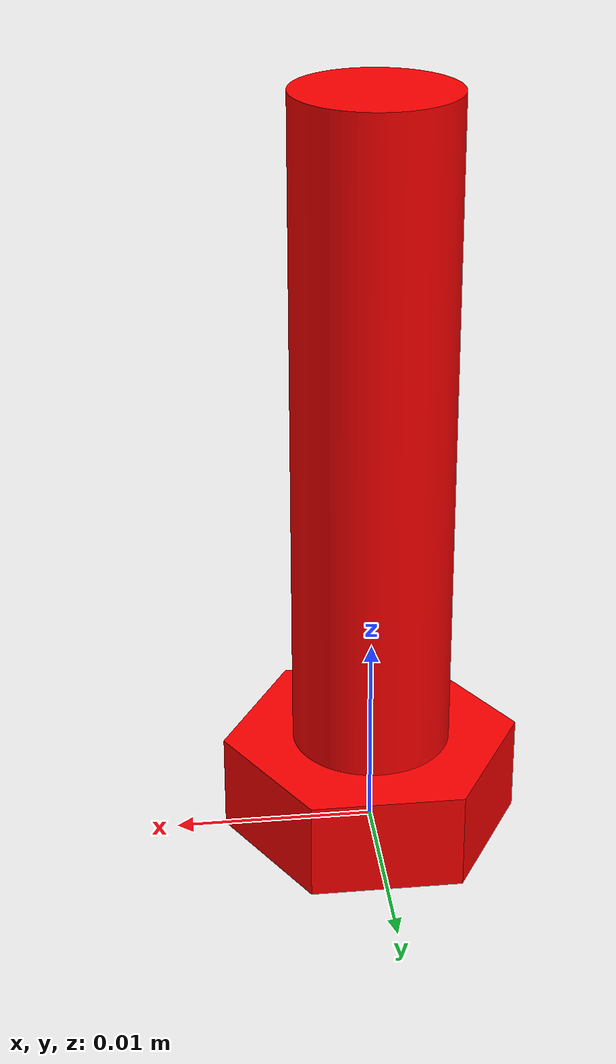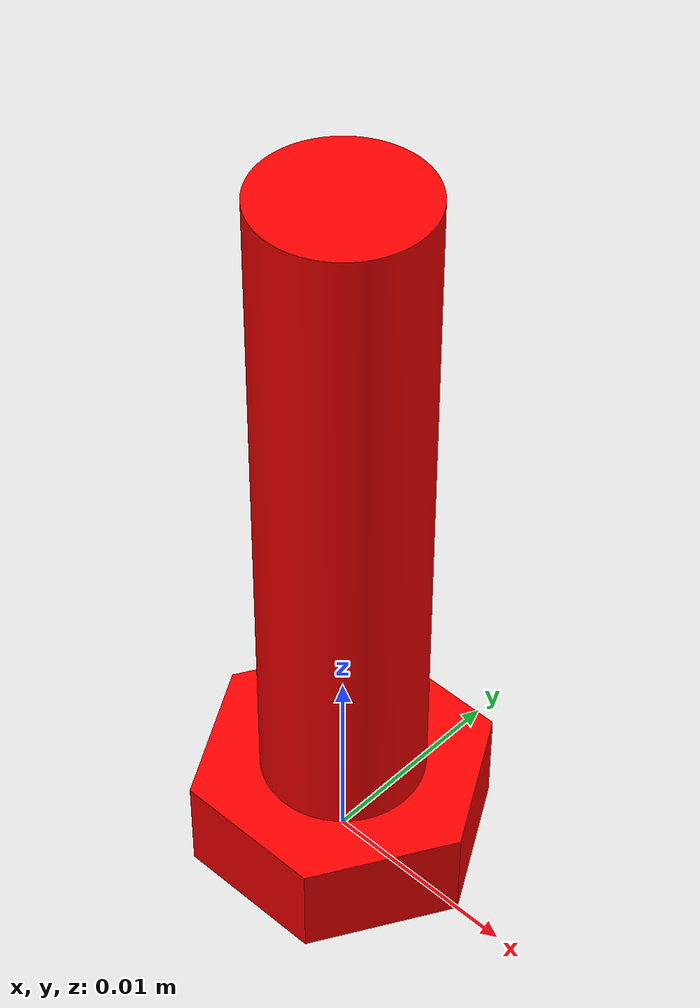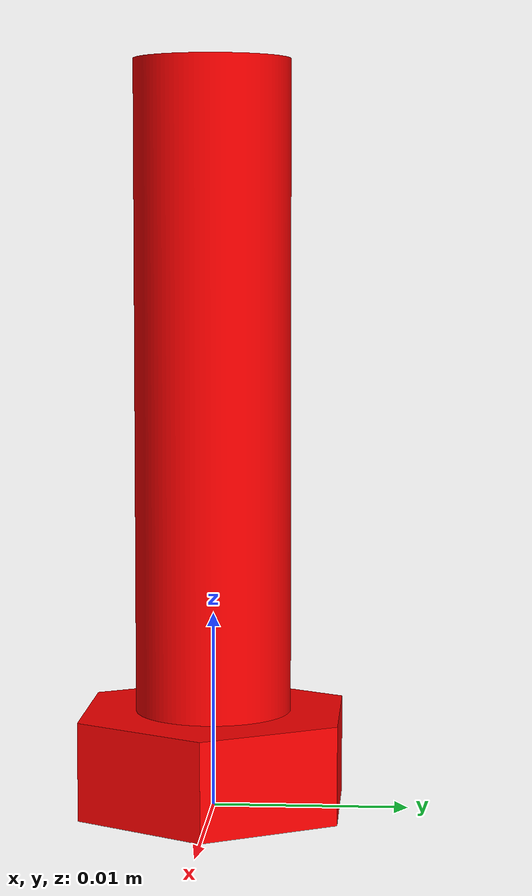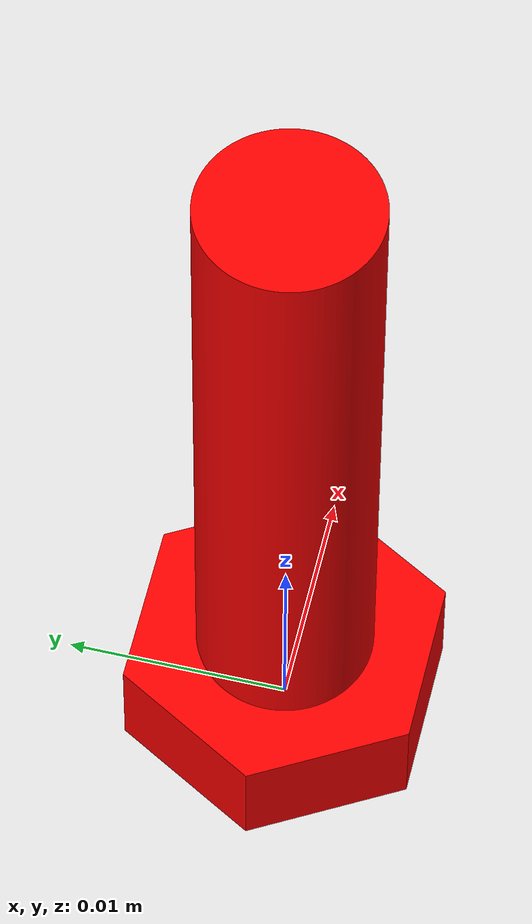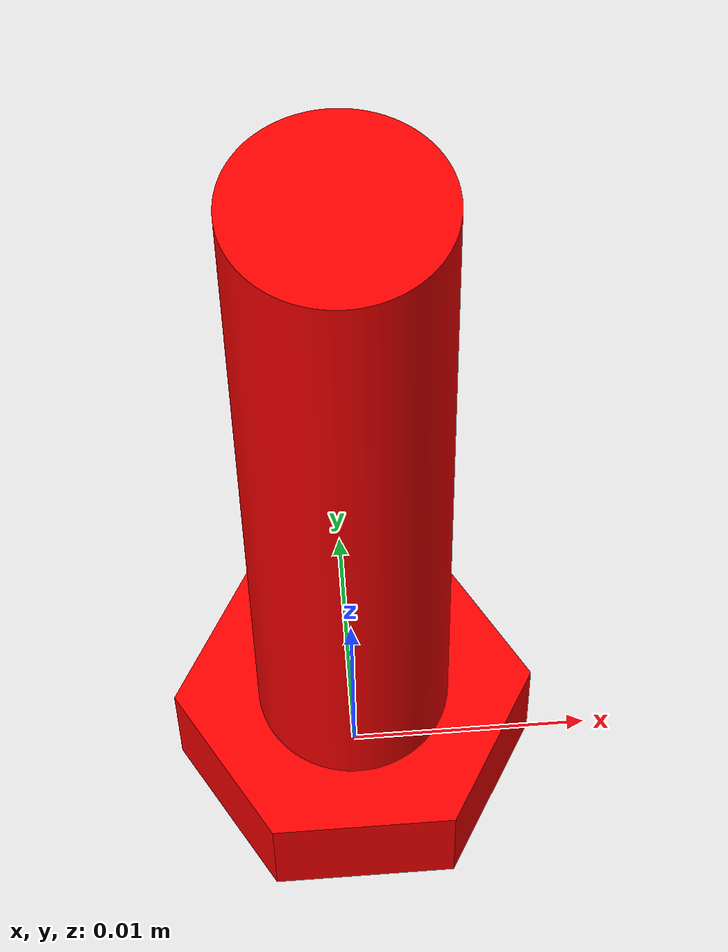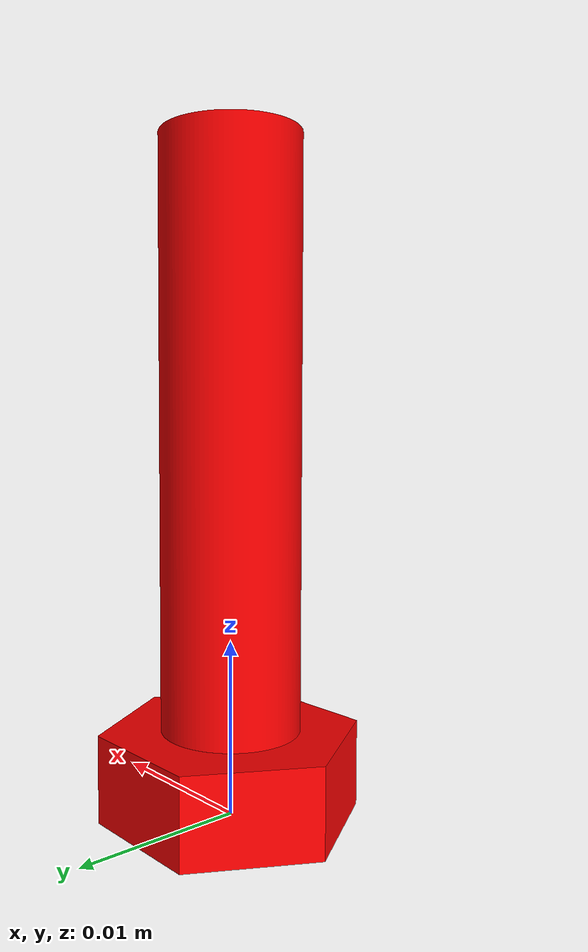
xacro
<?xml version="1.0"?>
<robot name="tornillo_robot">

     <link name="tornillo">
      <inertial>
        <mass value="0.01895747" />
        <origin rpy="0.0 0.0 0.0" xyz="0.0 0.0 0.0" />
        <inertia ixx="0.00000280" ixy="0.0" ixz="0.0" iyy="0.00000280" iyz="0.0" izz="0.00000024" />
      </inertial>
      <collision>
        <origin rpy="0.0 0.0 0.0" xyz="0.0 0.0 0.0" />
        <geometry>
          <mesh filename="package://proyecto_intermedio_robotica/meshes/tornillo_colision_2.stl" scale="0.01 0.01 0.01"/>
        </geometry>
      </collision>
      <visual>
        <origin rpy="0.0 0.0 0.0" xyz="0.0 0.0 0.0" />
        <geometry>
          <mesh filename="package://proyecto_intermedio_robotica/meshes/tornillo.stl" scale="0.01 0.01 0.01"/>
        </geometry>
        <material name="red">
          <color rgba="1.0 0.0 0.0 1.0"/>
        </material>
      </visual>
    </link>
    <gazebo reference="tornillo">
      <turnGravityOff>true</turnGravityOff>
      <mu1>100.0</mu1>
      <mu2>100.0</mu2>
      <minDepth>0.003</minDepth>
      <maxVel>0</maxVel>
        <material>Gazebo/BlueTransparentOverlay</material>
    </gazebo>

</robot>
